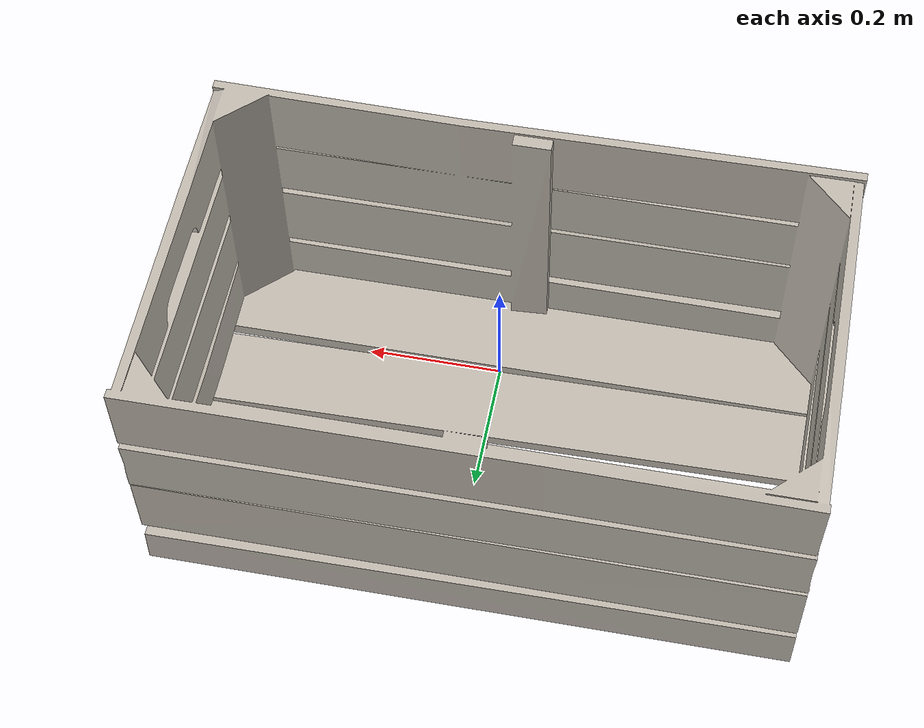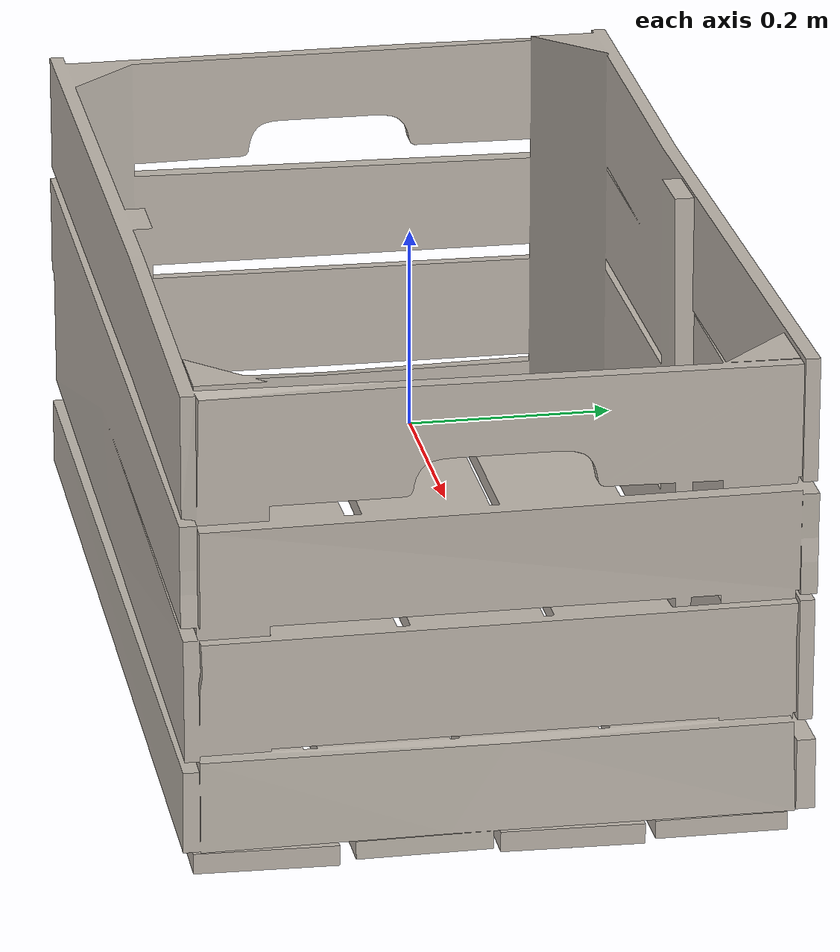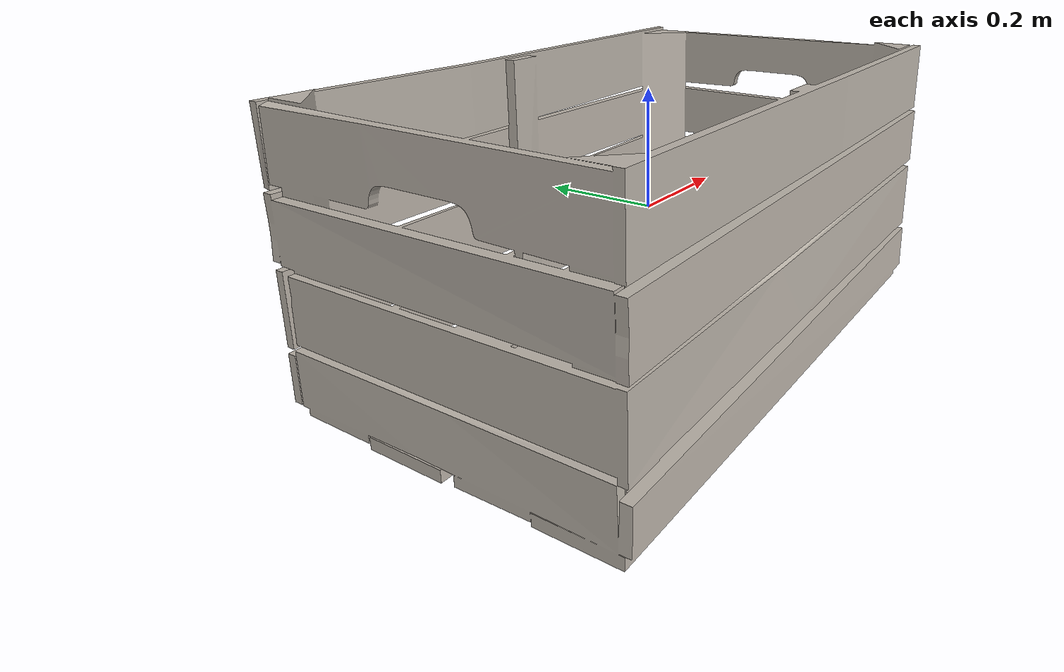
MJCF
<mujoco model="wooden_crate">
  <asset>
  <texture file="visual/ceramic.png" name="tex-wooden_crate" type="2d" />
  <material name="wooden_crate" reflectance="0.5" texrepeat="1 1" texture="tex-wooden_crate" texuniform="false" />
  <mesh file="visual/model_normalized_0.obj" name="model_normalized_0_vis" scale="1.0 1.0 1.0" /><mesh file="collision/model_normalized_collision_22.obj" name="model_normalized_collision_22._coll" scale="1.0 1.0 1.0" /><mesh file="collision/model_normalized_collision_4.obj" name="model_normalized_collision_4._coll" scale="1.0 1.0 1.0" /><mesh file="collision/model_normalized_collision_27.obj" name="model_normalized_collision_27._coll" scale="1.0 1.0 1.0" /><mesh file="collision/model_normalized_collision_6.obj" name="model_normalized_collision_6._coll" scale="1.0 1.0 1.0" /><mesh file="collision/model_normalized_collision_25.obj" name="model_normalized_collision_25._coll" scale="1.0 1.0 1.0" /><mesh file="collision/model_normalized_collision_26.obj" name="model_normalized_collision_26._coll" scale="1.0 1.0 1.0" /><mesh file="collision/model_normalized_collision_29.obj" name="model_normalized_collision_29._coll" scale="1.0 1.0 1.0" /><mesh file="collision/model_normalized_collision_19.obj" name="model_normalized_collision_19._coll" scale="1.0 1.0 1.0" /><mesh file="collision/model_normalized_collision_12.obj" name="model_normalized_collision_12._coll" scale="1.0 1.0 1.0" /><mesh file="collision/model_normalized_collision_17.obj" name="model_normalized_collision_17._coll" scale="1.0 1.0 1.0" /><mesh file="collision/model_normalized_collision_20.obj" name="model_normalized_collision_20._coll" scale="1.0 1.0 1.0" /><mesh file="collision/model_normalized_collision_14.obj" name="model_normalized_collision_14._coll" scale="1.0 1.0 1.0" /><mesh file="collision/model_normalized_collision_18.obj" name="model_normalized_collision_18._coll" scale="1.0 1.0 1.0" /><mesh file="collision/model_normalized_collision_15.obj" name="model_normalized_collision_15._coll" scale="1.0 1.0 1.0" /><mesh file="collision/model_normalized_collision_30.obj" name="model_normalized_collision_30._coll" scale="1.0 1.0 1.0" /><mesh file="collision/model_normalized_collision_31.obj" name="model_normalized_collision_31._coll" scale="1.0 1.0 1.0" /><mesh file="collision/model_normalized_collision_23.obj" name="model_normalized_collision_23._coll" scale="1.0 1.0 1.0" /><mesh file="collision/model_normalized_collision_28.obj" name="model_normalized_collision_28._coll" scale="1.0 1.0 1.0" /><mesh file="collision/model_normalized_collision_13.obj" name="model_normalized_collision_13._coll" scale="1.0 1.0 1.0" /><mesh file="collision/model_normalized_collision_5.obj" name="model_normalized_collision_5._coll" scale="1.0 1.0 1.0" /><mesh file="collision/model_normalized_collision_24.obj" name="model_normalized_collision_24._coll" scale="1.0 1.0 1.0" /><mesh file="collision/model_normalized_collision_16.obj" name="model_normalized_collision_16._coll" scale="1.0 1.0 1.0" /><mesh file="collision/model_normalized_collision_11.obj" name="model_normalized_collision_11._coll" scale="1.0 1.0 1.0" /><mesh file="collision/model_normalized_collision_1.obj" name="model_normalized_collision_1._coll" scale="1.0 1.0 1.0" /><mesh file="collision/model_normalized_collision_10.obj" name="model_normalized_collision_10._coll" scale="1.0 1.0 1.0" /><mesh file="collision/model_normalized_collision_21.obj" name="model_normalized_collision_21._coll" scale="1.0 1.0 1.0" /><mesh file="collision/model_normalized_collision_8.obj" name="model_normalized_collision_8._coll" scale="1.0 1.0 1.0" /><mesh file="collision/model_normalized_collision_7.obj" name="model_normalized_collision_7._coll" scale="1.0 1.0 1.0" /><mesh file="collision/model_normalized_collision_3.obj" name="model_normalized_collision_3._coll" scale="1.0 1.0 1.0" /><mesh file="collision/model_normalized_collision_2.obj" name="model_normalized_collision_2._coll" scale="1.0 1.0 1.0" /><mesh file="collision/model_normalized_collision_9.obj" name="model_normalized_collision_9._coll" scale="1.0 1.0 1.0" /><mesh file="collision/model_normalized_collision_0.obj" name="model_normalized_collision_0._coll" scale="1.0 1.0 1.0" /><texture type="2d" name="Material_17" file="visual/Material_17.png" /><material name="Material_17" texture="Material_17" specular="0.4000000000000001" shininess="0.001" /></asset>
  <worldbody>
    <body>
      <body name="object">
      <geom solimp="0.998 0.998 0.001" solref="0.001 1" density="100" friction="0.95 0.3 0.1" type="mesh" mesh="model_normalized_0_vis" conaffinity="0" contype="0" group="1" material="Material_17" /><geom solimp="0.998 0.998 0.001" solref="0.001 1" density="100" friction="0.95 0.3 0.1" type="mesh" mesh="model_normalized_collision_22._coll" group="0" rgba="0.8 0.8 0.8 0.0" /><geom solimp="0.998 0.998 0.001" solref="0.001 1" density="100" friction="0.95 0.3 0.1" type="mesh" mesh="model_normalized_collision_4._coll" group="0" rgba="0.8 0.8 0.8 0.0" /><geom solimp="0.998 0.998 0.001" solref="0.001 1" density="100" friction="0.95 0.3 0.1" type="mesh" mesh="model_normalized_collision_27._coll" group="0" rgba="0.8 0.8 0.8 0.0" /><geom solimp="0.998 0.998 0.001" solref="0.001 1" density="100" friction="0.95 0.3 0.1" type="mesh" mesh="model_normalized_collision_6._coll" group="0" rgba="0.8 0.8 0.8 0.0" /><geom solimp="0.998 0.998 0.001" solref="0.001 1" density="100" friction="0.95 0.3 0.1" type="mesh" mesh="model_normalized_collision_25._coll" group="0" rgba="0.8 0.8 0.8 0.0" /><geom solimp="0.998 0.998 0.001" solref="0.001 1" density="100" friction="0.95 0.3 0.1" type="mesh" mesh="model_normalized_collision_26._coll" group="0" rgba="0.8 0.8 0.8 0.0" /><geom solimp="0.998 0.998 0.001" solref="0.001 1" density="100" friction="0.95 0.3 0.1" type="mesh" mesh="model_normalized_collision_29._coll" group="0" rgba="0.8 0.8 0.8 0.0" /><geom solimp="0.998 0.998 0.001" solref="0.001 1" density="100" friction="0.95 0.3 0.1" type="mesh" mesh="model_normalized_collision_19._coll" group="0" rgba="0.8 0.8 0.8 0.0" /><geom solimp="0.998 0.998 0.001" solref="0.001 1" density="100" friction="0.95 0.3 0.1" type="mesh" mesh="model_normalized_collision_12._coll" group="0" rgba="0.8 0.8 0.8 0.0" /><geom solimp="0.998 0.998 0.001" solref="0.001 1" density="100" friction="0.95 0.3 0.1" type="mesh" mesh="model_normalized_collision_17._coll" group="0" rgba="0.8 0.8 0.8 0.0" /><geom solimp="0.998 0.998 0.001" solref="0.001 1" density="100" friction="0.95 0.3 0.1" type="mesh" mesh="model_normalized_collision_20._coll" group="0" rgba="0.8 0.8 0.8 0.0" /><geom solimp="0.998 0.998 0.001" solref="0.001 1" density="100" friction="0.95 0.3 0.1" type="mesh" mesh="model_normalized_collision_14._coll" group="0" rgba="0.8 0.8 0.8 0.0" /><geom solimp="0.998 0.998 0.001" solref="0.001 1" density="100" friction="0.95 0.3 0.1" type="mesh" mesh="model_normalized_collision_18._coll" group="0" rgba="0.8 0.8 0.8 0.0" /><geom solimp="0.998 0.998 0.001" solref="0.001 1" density="100" friction="0.95 0.3 0.1" type="mesh" mesh="model_normalized_collision_15._coll" group="0" rgba="0.8 0.8 0.8 0.0" /><geom solimp="0.998 0.998 0.001" solref="0.001 1" density="100" friction="0.95 0.3 0.1" type="mesh" mesh="model_normalized_collision_30._coll" group="0" rgba="0.8 0.8 0.8 0.0" /><geom solimp="0.998 0.998 0.001" solref="0.001 1" density="100" friction="0.95 0.3 0.1" type="mesh" mesh="model_normalized_collision_31._coll" group="0" rgba="0.8 0.8 0.8 0.0" /><geom solimp="0.998 0.998 0.001" solref="0.001 1" density="100" friction="0.95 0.3 0.1" type="mesh" mesh="model_normalized_collision_23._coll" group="0" rgba="0.8 0.8 0.8 0.0" /><geom solimp="0.998 0.998 0.001" solref="0.001 1" density="100" friction="0.95 0.3 0.1" type="mesh" mesh="model_normalized_collision_28._coll" group="0" rgba="0.8 0.8 0.8 0.0" /><geom solimp="0.998 0.998 0.001" solref="0.001 1" density="100" friction="0.95 0.3 0.1" type="mesh" mesh="model_normalized_collision_13._coll" group="0" rgba="0.8 0.8 0.8 0.0" /><geom solimp="0.998 0.998 0.001" solref="0.001 1" density="100" friction="0.95 0.3 0.1" type="mesh" mesh="model_normalized_collision_5._coll" group="0" rgba="0.8 0.8 0.8 0.0" /><geom solimp="0.998 0.998 0.001" solref="0.001 1" density="100" friction="0.95 0.3 0.1" type="mesh" mesh="model_normalized_collision_24._coll" group="0" rgba="0.8 0.8 0.8 0.0" /><geom solimp="0.998 0.998 0.001" solref="0.001 1" density="100" friction="0.95 0.3 0.1" type="mesh" mesh="model_normalized_collision_16._coll" group="0" rgba="0.8 0.8 0.8 0.0" /><geom solimp="0.998 0.998 0.001" solref="0.001 1" density="100" friction="0.95 0.3 0.1" type="mesh" mesh="model_normalized_collision_11._coll" group="0" rgba="0.8 0.8 0.8 0.0" /><geom solimp="0.998 0.998 0.001" solref="0.001 1" density="100" friction="0.95 0.3 0.1" type="mesh" mesh="model_normalized_collision_1._coll" group="0" rgba="0.8 0.8 0.8 0.0" /><geom solimp="0.998 0.998 0.001" solref="0.001 1" density="100" friction="0.95 0.3 0.1" type="mesh" mesh="model_normalized_collision_10._coll" group="0" rgba="0.8 0.8 0.8 0.0" /><geom solimp="0.998 0.998 0.001" solref="0.001 1" density="100" friction="0.95 0.3 0.1" type="mesh" mesh="model_normalized_collision_21._coll" group="0" rgba="0.8 0.8 0.8 0.0" /><geom solimp="0.998 0.998 0.001" solref="0.001 1" density="100" friction="0.95 0.3 0.1" type="mesh" mesh="model_normalized_collision_8._coll" group="0" rgba="0.8 0.8 0.8 0.0" /><geom solimp="0.998 0.998 0.001" solref="0.001 1" density="100" friction="0.95 0.3 0.1" type="mesh" mesh="model_normalized_collision_7._coll" group="0" rgba="0.8 0.8 0.8 0.0" /><geom solimp="0.998 0.998 0.001" solref="0.001 1" density="100" friction="0.95 0.3 0.1" type="mesh" mesh="model_normalized_collision_3._coll" group="0" rgba="0.8 0.8 0.8 0.0" /><geom solimp="0.998 0.998 0.001" solref="0.001 1" density="100" friction="0.95 0.3 0.1" type="mesh" mesh="model_normalized_collision_2._coll" group="0" rgba="0.8 0.8 0.8 0.0" /><geom solimp="0.998 0.998 0.001" solref="0.001 1" density="100" friction="0.95 0.3 0.1" type="mesh" mesh="model_normalized_collision_9._coll" group="0" rgba="0.8 0.8 0.8 0.0" /><geom solimp="0.998 0.998 0.001" solref="0.001 1" density="100" friction="0.95 0.3 0.1" type="mesh" mesh="model_normalized_collision_0._coll" group="0" rgba="0.8 0.8 0.8 0.0" /></body>
      <site rgba="0 0 0 0" size="0.005" pos="-5.0997588374457337e-08 0.002405671355804828 -0.24398515836316542" name="bottom_site" />
      <site rgba="0 0 0 0" size="0.005" pos="-5.0997588374457337e-08 0.002405671355804828 0.24086331680461387" name="top_site" />
      <site rgba="0 0 0 0" size="0.005" pos="0.5075756964460556 0.3054359683166663 -0.00156092077927579" name="horizontal_radius_site" />
    </body>
  </worldbody>
</mujoco>
